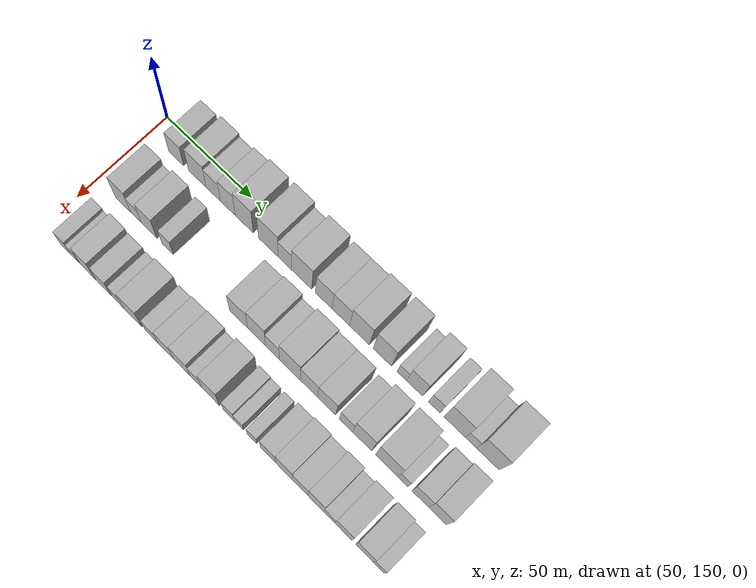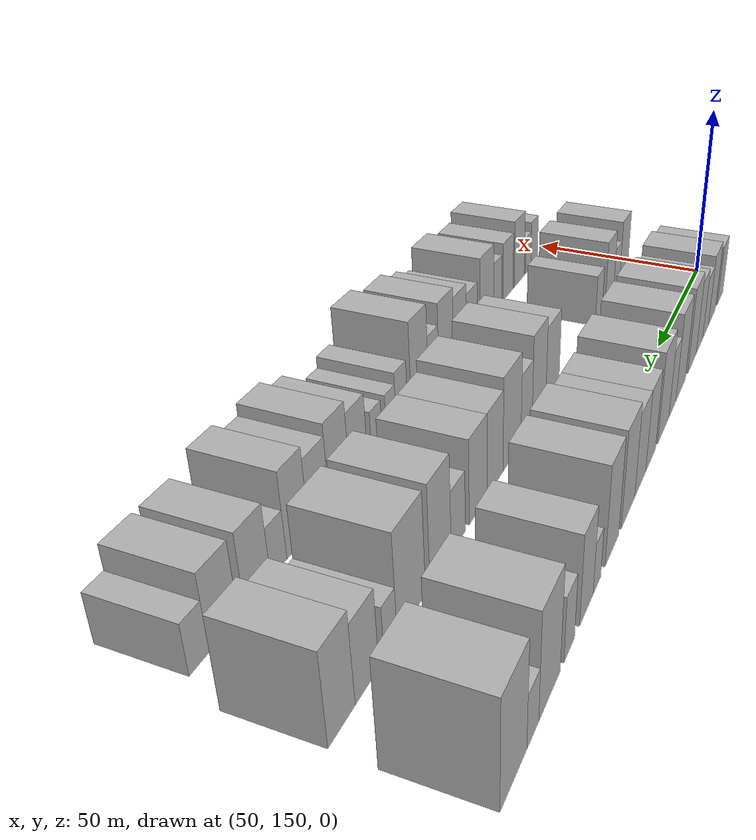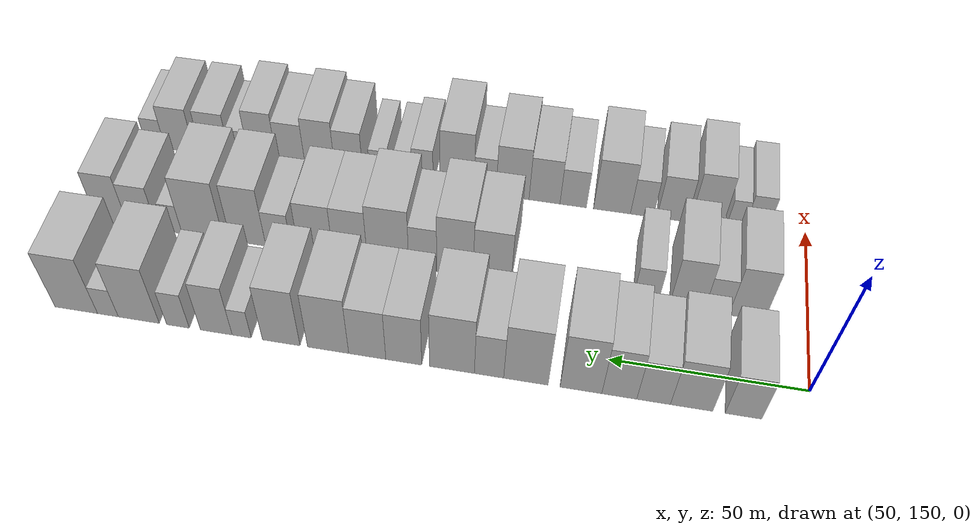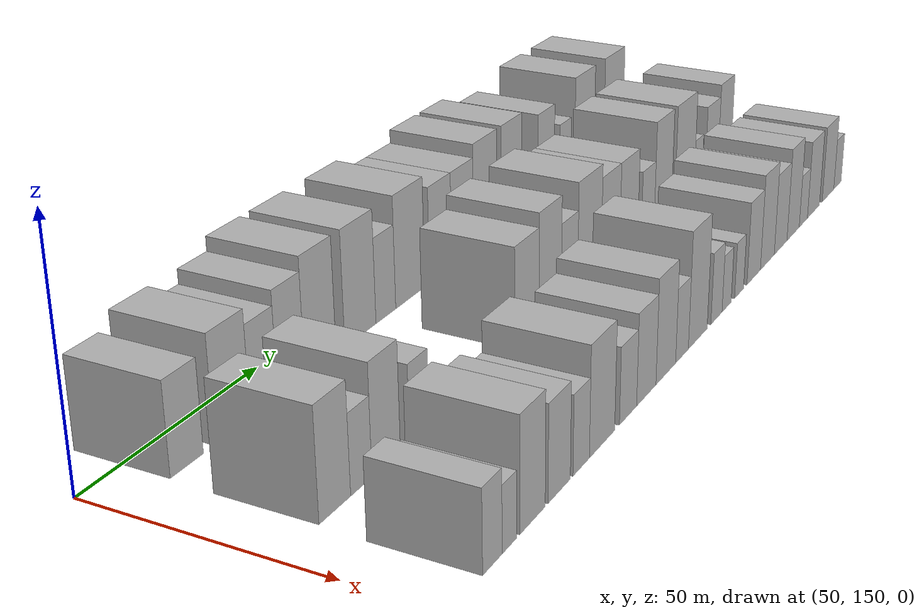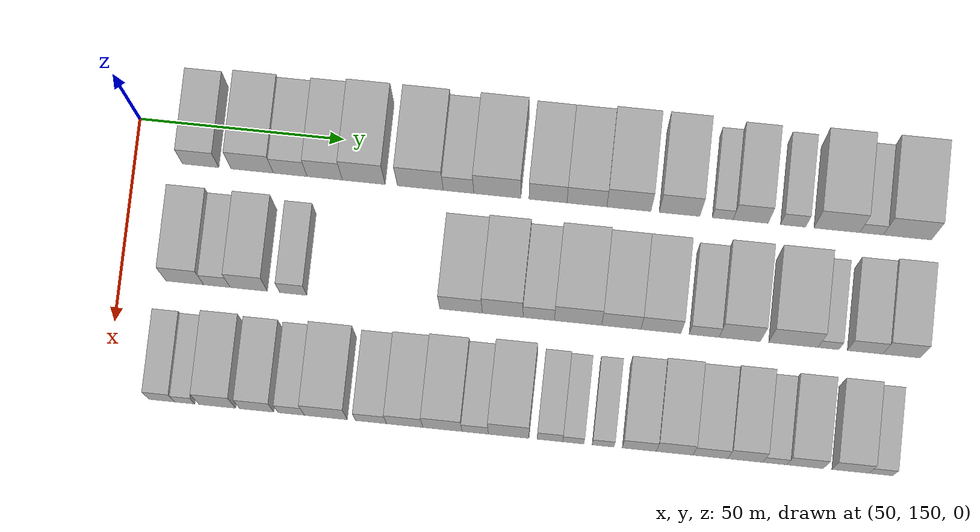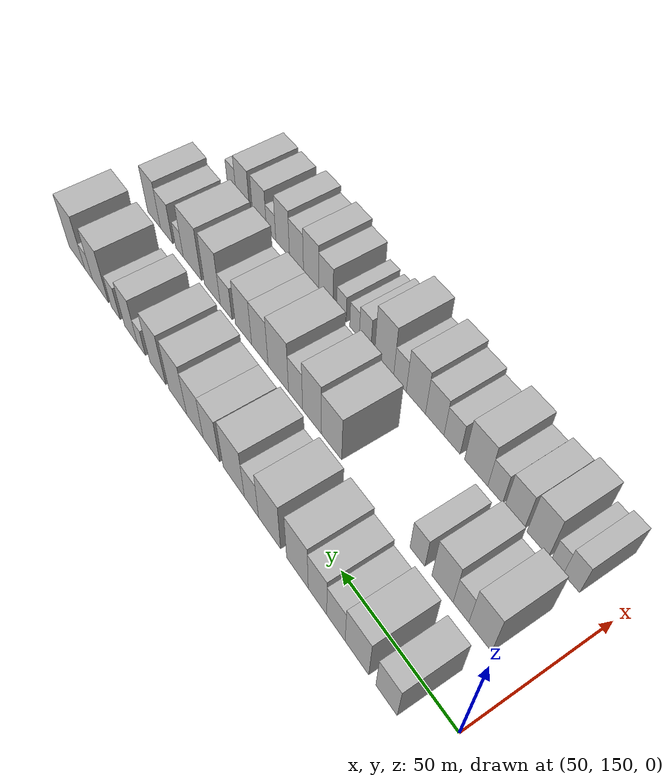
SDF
<sdf version="1.6">
 <world name="default">
  <model name="building_59">
   <static>1</static>
   <pose>50.0000 166.0551 0 0.000000 0.000000 0.000000</pose>
   <link name="link">
    <pose>0 0 9.00 0 0 0</pose>
    <collision name="collision"><geometry><box><size>20.0000 8.8780 18.0000</size></box></geometry></collision>
    <visual name="visual">
     <cast_shadows>0</cast_shadows>
     <geometry><box><size>20.0000 8.8780 18.0000</size></box></geometry>
     <material>
      <script>
       <uri>model://HANNAS_wall/materials/scripts</uri>
       <uri>model://HANNAS_wall/materials/textures</uri>
       <name>vrc/HANNAS_wall</name>
      </script>
     </material>
    </visual>
   </link>
  </model>
  <model name="building_60">
   <static>1</static>
   <pose>50.0000 178.6705 0 0.000000 0.000000 0.000000</pose>
   <link name="link">
    <pose>0 0 10.50 0 0 0</pose>
    <collision name="collision"><geometry><box><size>20.0000 10.3527 21.0000</size></box></geometry></collision>
    <visual name="visual">
     <cast_shadows>0</cast_shadows>
     <geometry><box><size>20.0000 10.3527 21.0000</size></box></geometry>
     <material>
      <script>
       <uri>model://HANNAS_wall/materials/scripts</uri>
       <uri>model://HANNAS_wall/materials/textures</uri>
       <name>vrc/HANNAS_wall</name>
      </script>
     </material>
    </visual>
   </link>
  </model>
  <model name="building_61">
   <static>1</static>
   <pose>50.0000 187.9829 0 0.000000 0.000000 0.000000</pose>
   <link name="link">
    <pose>0 0 9.00 0 0 0</pose>
    <collision name="collision"><geometry><box><size>20.0000 8.2720 18.0000</size></box></geometry></collision>
    <visual name="visual">
     <cast_shadows>0</cast_shadows>
     <geometry><box><size>20.0000 8.2720 18.0000</size></box></geometry>
     <material>
      <script>
       <uri>model://HANNAS_wall/materials/scripts</uri>
       <uri>model://HANNAS_wall/materials/textures</uri>
       <name>vrc/HANNAS_wall</name>
      </script>
     </material>
    </visual>
   </link>
  </model>
  <model name="building_62">
   <static>1</static>
   <pose>50.0000 196.4425 0 0.000000 0.000000 0.000000</pose>
   <link name="link">
    <pose>0 0 10.50 0 0 0</pose>
    <collision name="collision"><geometry><box><size>20.0000 8.6472 21.0000</size></box></geometry></collision>
    <visual name="visual">
     <cast_shadows>0</cast_shadows>
     <geometry><box><size>20.0000 8.6472 21.0000</size></box></geometry>
     <material>
      <script>
       <uri>model://HANNAS_wall/materials/scripts</uri>
       <uri>model://HANNAS_wall/materials/textures</uri>
       <name>vrc/HANNAS_wall</name>
      </script>
     </material>
    </visual>
   </link>
  </model>
  <model name="building_63">
   <static>1</static>
   <pose>50.0000 205.9743 0 0.000000 0.000000 0.000000</pose>
   <link name="link">
    <pose>0 0 12.00 0 0 0</pose>
    <collision name="collision"><geometry><box><size>20.0000 10.4166 24.0000</size></box></geometry></collision>
    <visual name="visual">
     <cast_shadows>0</cast_shadows>
     <geometry><box><size>20.0000 10.4166 24.0000</size></box></geometry>
     <material>
      <script>
       <uri>model://HANNAS_wall/materials/scripts</uri>
       <uri>model://HANNAS_wall/materials/textures</uri>
       <name>vrc/HANNAS_wall</name>
      </script>
     </material>
    </visual>
   </link>
  </model>
  <model name="building_64">
   <static>1</static>
   <pose>50.0000 219.7801 0 0.000000 0.000000 0.000000</pose>
   <link name="link">
    <pose>0 0 12.00 0 0 0</pose>
    <collision name="collision"><geometry><box><size>20.0000 11.1949 24.0000</size></box></geometry></collision>
    <visual name="visual">
     <cast_shadows>0</cast_shadows>
     <geometry><box><size>20.0000 11.1949 24.0000</size></box></geometry>
     <material>
      <script>
       <uri>model://HANNAS_wall/materials/scripts</uri>
       <uri>model://HANNAS_wall/materials/textures</uri>
       <name>vrc/HANNAS_wall</name>
      </script>
     </material>
    </visual>
   </link>
  </model>
  <model name="building_65">
   <static>1</static>
   <pose>50.0000 229.1070 0 0.000000 0.000000 0.000000</pose>
   <link name="link">
    <pose>0 0 9.00 0 0 0</pose>
    <collision name="collision"><geometry><box><size>20.0000 7.4590 18.0000</size></box></geometry></collision>
    <visual name="visual">
     <cast_shadows>0</cast_shadows>
     <geometry><box><size>20.0000 7.4590 18.0000</size></box></geometry>
     <material>
      <script>
       <uri>model://HANNAS_wall/materials/scripts</uri>
       <uri>model://HANNAS_wall/materials/textures</uri>
       <name>vrc/HANNAS_wall</name>
      </script>
     </material>
    </visual>
   </link>
  </model>
  <model name="building_66">
   <static>1</static>
   <pose>50.0000 238.5659 0 0.000000 0.000000 0.000000</pose>
   <link name="link">
    <pose>0 0 12.00 0 0 0</pose>
    <collision name="collision"><geometry><box><size>20.0000 11.4588 24.0000</size></box></geometry></collision>
    <visual name="visual">
     <cast_shadows>0</cast_shadows>
     <geometry><box><size>20.0000 11.4588 24.0000</size></box></geometry>
     <material>
      <script>
       <uri>model://HANNAS_wall/materials/scripts</uri>
       <uri>model://HANNAS_wall/materials/textures</uri>
       <name>vrc/HANNAS_wall</name>
      </script>
     </material>
    </visual>
   </link>
  </model>
  <model name="building_67">
   <static>1</static>
   <pose>50.0000 250.9318 0 0.000000 0.000000 0.000000</pose>
   <link name="link">
    <pose>0 0 10.50 0 0 0</pose>
    <collision name="collision"><geometry><box><size>20.0000 9.2730 21.0000</size></box></geometry></collision>
    <visual name="visual">
     <cast_shadows>0</cast_shadows>
     <geometry><box><size>20.0000 9.2730 21.0000</size></box></geometry>
     <material>
      <script>
       <uri>model://HANNAS_wall/materials/scripts</uri>
       <uri>model://HANNAS_wall/materials/textures</uri>
       <name>vrc/HANNAS_wall</name>
      </script>
     </material>
    </visual>
   </link>
  </model>
  <model name="building_68">
   <static>1</static>
   <pose>50.0000 260.4021 0 0.000000 0.000000 0.000000</pose>
   <link name="link">
    <pose>0 0 10.50 0 0 0</pose>
    <collision name="collision"><geometry><box><size>20.0000 9.6675 21.0000</size></box></geometry></collision>
    <visual name="visual">
     <cast_shadows>0</cast_shadows>
     <geometry><box><size>20.0000 9.6675 21.0000</size></box></geometry>
     <material>
      <script>
       <uri>model://HANNAS_wall/materials/scripts</uri>
       <uri>model://HANNAS_wall/materials/textures</uri>
       <name>vrc/HANNAS_wall</name>
      </script>
     </material>
    </visual>
   </link>
  </model>
  <model name="building_69">
   <static>1</static>
   <pose>50.0000 270.6303 0 0.000000 0.000000 0.000000</pose>
   <link name="link">
    <pose>0 0 12.00 0 0 0</pose>
    <collision name="collision"><geometry><box><size>20.0000 10.7889 24.0000</size></box></geometry></collision>
    <visual name="visual">
     <cast_shadows>0</cast_shadows>
     <geometry><box><size>20.0000 10.7889 24.0000</size></box></geometry>
     <material>
      <script>
       <uri>model://HANNAS_wall/materials/scripts</uri>
       <uri>model://HANNAS_wall/materials/textures</uri>
       <name>vrc/HANNAS_wall</name>
      </script>
     </material>
    </visual>
   </link>
  </model>
  <model name="building_70">
   <static>1</static>
   <pose>50.0000 282.9871 0 0.000000 0.000000 0.000000</pose>
   <link name="link">
    <pose>0 0 12.00 0 0 0</pose>
    <collision name="collision"><geometry><box><size>20.0000 9.9249 24.0000</size></box></geometry></collision>
    <visual name="visual">
     <cast_shadows>0</cast_shadows>
     <geometry><box><size>20.0000 9.9249 24.0000</size></box></geometry>
     <material>
      <script>
       <uri>model://HANNAS_wall/materials/scripts</uri>
       <uri>model://HANNAS_wall/materials/textures</uri>
       <name>vrc/HANNAS_wall</name>
      </script>
     </material>
    </visual>
   </link>
  </model>
  <model name="building_71">
   <static>1</static>
   <pose>50.0000 293.4947 0 0.000000 0.000000 0.000000</pose>
   <link name="link">
    <pose>0 0 6.00 0 0 0</pose>
    <collision name="collision"><geometry><box><size>20.0000 5.0901 12.0000</size></box></geometry></collision>
    <visual name="visual">
     <cast_shadows>0</cast_shadows>
     <geometry><box><size>20.0000 5.0901 12.0000</size></box></geometry>
     <material>
      <script>
       <uri>model://HANNAS_wall/materials/scripts</uri>
       <uri>model://HANNAS_wall/materials/textures</uri>
       <name>vrc/HANNAS_wall</name>
      </script>
     </material>
    </visual>
   </link>
  </model>
  <model name="building_72">
   <static>1</static>
   <pose>50.0000 300.3063 0 0.000000 0.000000 0.000000</pose>
   <link name="link">
    <pose>0 0 10.50 0 0 0</pose>
    <collision name="collision"><geometry><box><size>20.0000 8.5331 21.0000</size></box></geometry></collision>
    <visual name="visual">
     <cast_shadows>0</cast_shadows>
     <geometry><box><size>20.0000 8.5331 21.0000</size></box></geometry>
     <material>
      <script>
       <uri>model://HANNAS_wall/materials/scripts</uri>
       <uri>model://HANNAS_wall/materials/textures</uri>
       <name>vrc/HANNAS_wall</name>
      </script>
     </material>
    </visual>
   </link>
  </model>
  <model name="building_73">
   <static>1</static>
   <pose>50.0000 310.6391 0 0.000000 0.000000 0.000000</pose>
   <link name="link">
    <pose>0 0 7.50 0 0 0</pose>
    <collision name="collision"><geometry><box><size>20.0000 6.1326 15.0000</size></box></geometry></collision>
    <visual name="visual">
     <cast_shadows>0</cast_shadows>
     <geometry><box><size>20.0000 6.1326 15.0000</size></box></geometry>
     <material>
      <script>
       <uri>model://HANNAS_wall/materials/scripts</uri>
       <uri>model://HANNAS_wall/materials/textures</uri>
       <name>vrc/HANNAS_wall</name>
      </script>
     </material>
    </visual>
   </link>
  </model>
  <model name="building_74">
   <static>1</static>
   <pose>50.0000 321.2941 0 0.000000 0.000000 0.000000</pose>
   <link name="link">
    <pose>0 0 12.00 0 0 0</pose>
    <collision name="collision"><geometry><box><size>20.0000 11.1773 24.0000</size></box></geometry></collision>
    <visual name="visual">
     <cast_shadows>0</cast_shadows>
     <geometry><box><size>20.0000 11.1773 24.0000</size></box></geometry>
     <material>
      <script>
       <uri>model://HANNAS_wall/materials/scripts</uri>
       <uri>model://HANNAS_wall/materials/textures</uri>
       <name>vrc/HANNAS_wall</name>
      </script>
     </material>
    </visual>
   </link>
  </model>
  <model name="building_75">
   <static>1</static>
   <pose>50.0000 329.7348 0 0.000000 0.000000 0.000000</pose>
   <link name="link">
    <pose>0 0 6.00 0 0 0</pose>
    <collision name="collision"><geometry><box><size>20.0000 5.7041 12.0000</size></box></geometry></collision>
    <visual name="visual">
     <cast_shadows>0</cast_shadows>
     <geometry><box><size>20.0000 5.7041 12.0000</size></box></geometry>
     <material>
      <script>
       <uri>model://HANNAS_wall/materials/scripts</uri>
       <uri>model://HANNAS_wall/materials/textures</uri>
       <name>vrc/HANNAS_wall</name>
      </script>
     </material>
    </visual>
   </link>
  </model>
  <model name="building_76">
   <static>1</static>
   <pose>50.0000 338.4518 0 0.000000 0.000000 0.000000</pose>
   <link name="link">
    <pose>0 0 12.00 0 0 0</pose>
    <collision name="collision"><geometry><box><size>20.0000 11.7300 24.0000</size></box></geometry></collision>
    <visual name="visual">
     <cast_shadows>0</cast_shadows>
     <geometry><box><size>20.0000 11.7300 24.0000</size></box></geometry>
     <material>
      <script>
       <uri>model://HANNAS_wall/materials/scripts</uri>
       <uri>model://HANNAS_wall/materials/textures</uri>
       <name>vrc/HANNAS_wall</name>
      </script>
     </material>
    </visual>
   </link>
  </model>
  <model name="building_130">
   <static>1</static>
   <pose>79.0000 165.6848 0 0.000000 0.000000 0.000000</pose>
   <link name="link">
    <pose>0 0 10.50 0 0 0</pose>
    <collision name="collision"><geometry><box><size>20.0000 9.1607 21.0000</size></box></geometry></collision>
    <visual name="visual">
     <cast_shadows>0</cast_shadows>
     <geometry><box><size>20.0000 9.1607 21.0000</size></box></geometry>
     <material>
      <script>
       <uri>model://HANNAS_wall/materials/scripts</uri>
       <uri>model://HANNAS_wall/materials/textures</uri>
       <name>vrc/HANNAS_wall</name>
      </script>
     </material>
    </visual>
   </link>
  </model>
  <model name="building_131">
   <static>1</static>
   <pose>79.0000 173.4931 0 0.000000 0.000000 0.000000</pose>
   <link name="link">
    <pose>0 0 7.50 0 0 0</pose>
    <collision name="collision"><geometry><box><size>20.0000 6.4560 15.0000</size></box></geometry></collision>
    <visual name="visual">
     <cast_shadows>0</cast_shadows>
     <geometry><box><size>20.0000 6.4560 15.0000</size></box></geometry>
     <material>
      <script>
       <uri>model://HANNAS_wall/materials/scripts</uri>
       <uri>model://HANNAS_wall/materials/textures</uri>
       <name>vrc/HANNAS_wall</name>
      </script>
     </material>
    </visual>
   </link>
  </model>
  <model name="building_132">
   <static>1</static>
   <pose>79.0000 181.2346 0 0.000000 0.000000 0.000000</pose>
   <link name="link">
    <pose>0 0 10.50 0 0 0</pose>
    <collision name="collision"><geometry><box><size>20.0000 9.0271 21.0000</size></box></geometry></collision>
    <visual name="visual">
     <cast_shadows>0</cast_shadows>
     <geometry><box><size>20.0000 9.0271 21.0000</size></box></geometry>
     <material>
      <script>
       <uri>model://HANNAS_wall/materials/scripts</uri>
       <uri>model://HANNAS_wall/materials/textures</uri>
       <name>vrc/HANNAS_wall</name>
      </script>
     </material>
    </visual>
   </link>
  </model>
  <model name="building_133">
   <static>1</static>
   <pose>79.0000 192.0437 0 0.000000 0.000000 0.000000</pose>
   <link name="link">
    <pose>0 0 7.50 0 0 0</pose>
    <collision name="collision"><geometry><box><size>20.0000 6.5910 15.0000</size></box></geometry></collision>
    <visual name="visual">
     <cast_shadows>0</cast_shadows>
     <geometry><box><size>20.0000 6.5910 15.0000</size></box></geometry>
     <material>
      <script>
       <uri>model://HANNAS_wall/materials/scripts</uri>
       <uri>model://HANNAS_wall/materials/textures</uri>
       <name>vrc/HANNAS_wall</name>
      </script>
     </material>
    </visual>
   </link>
  </model>
  <model name="building_134">
   <static>1</static>
   <pose>79.0000 232.7946 0 0.000000 0.000000 0.000000</pose>
   <link name="link">
    <pose>0 0 10.50 0 0 0</pose>
    <collision name="collision"><geometry><box><size>20.0000 10.3036 21.0000</size></box></geometry></collision>
    <visual name="visual">
     <cast_shadows>0</cast_shadows>
     <geometry><box><size>20.0000 10.3036 21.0000</size></box></geometry>
     <material>
      <script>
       <uri>model://HANNAS_wall/materials/scripts</uri>
       <uri>model://HANNAS_wall/materials/textures</uri>
       <name>vrc/HANNAS_wall</name>
      </script>
     </material>
    </visual>
   </link>
  </model>
  <model name="building_135">
   <static>1</static>
   <pose>79.0000 242.8887 0 0.000000 0.000000 0.000000</pose>
   <link name="link">
    <pose>0 0 12.00 0 0 0</pose>
    <collision name="collision"><geometry><box><size>20.0000 9.8847 24.0000</size></box></geometry></collision>
    <visual name="visual">
     <cast_shadows>0</cast_shadows>
     <geometry><box><size>20.0000 9.8847 24.0000</size></box></geometry>
     <material>
      <script>
       <uri>model://HANNAS_wall/materials/scripts</uri>
       <uri>model://HANNAS_wall/materials/textures</uri>
       <name>vrc/HANNAS_wall</name>
      </script>
     </material>
    </visual>
   </link>
  </model>
  <model name="building_136">
   <static>1</static>
   <pose>79.0000 251.6415 0 0.000000 0.000000 0.000000</pose>
   <link name="link">
    <pose>0 0 9.00 0 0 0</pose>
    <collision name="collision"><geometry><box><size>20.0000 7.6210 18.0000</size></box></geometry></collision>
    <visual name="visual">
     <cast_shadows>0</cast_shadows>
     <geometry><box><size>20.0000 7.6210 18.0000</size></box></geometry>
     <material>
      <script>
       <uri>model://HANNAS_wall/materials/scripts</uri>
       <uri>model://HANNAS_wall/materials/textures</uri>
       <name>vrc/HANNAS_wall</name>
      </script>
     </material>
    </visual>
   </link>
  </model>
  <model name="building_137">
   <static>1</static>
   <pose>79.0000 261.1625 0 0.000000 0.000000 0.000000</pose>
   <link name="link">
    <pose>0 0 12.00 0 0 0</pose>
    <collision name="collision"><geometry><box><size>20.0000 11.4209 24.0000</size></box></geometry></collision>
    <visual name="visual">
     <cast_shadows>0</cast_shadows>
     <geometry><box><size>20.0000 11.4209 24.0000</size></box></geometry>
     <material>
      <script>
       <uri>model://HANNAS_wall/materials/scripts</uri>
       <uri>model://HANNAS_wall/materials/textures</uri>
       <name>vrc/HANNAS_wall</name>
      </script>
     </material>
    </visual>
   </link>
  </model>
  <model name="building_138">
   <static>1</static>
   <pose>79.0000 271.6243 0 0.000000 0.000000 0.000000</pose>
   <link name="link">
    <pose>0 0 10.50 0 0 0</pose>
    <collision name="collision"><geometry><box><size>20.0000 9.5027 21.0000</size></box></geometry></collision>
    <visual name="visual">
     <cast_shadows>0</cast_shadows>
     <geometry><box><size>20.0000 9.5027 21.0000</size></box></geometry>
     <material>
      <script>
       <uri>model://HANNAS_wall/materials/scripts</uri>
       <uri>model://HANNAS_wall/materials/textures</uri>
       <name>vrc/HANNAS_wall</name>
      </script>
     </material>
    </visual>
   </link>
  </model>
  <model name="building_139">
   <static>1</static>
   <pose>79.0000 281.2306 0 0.000000 0.000000 0.000000</pose>
   <link name="link">
    <pose>0 0 10.50 0 0 0</pose>
    <collision name="collision"><geometry><box><size>20.0000 9.7100 21.0000</size></box></geometry></collision>
    <visual name="visual">
     <cast_shadows>0</cast_shadows>
     <geometry><box><size>20.0000 9.7100 21.0000</size></box></geometry>
     <material>
      <script>
       <uri>model://HANNAS_wall/materials/scripts</uri>
       <uri>model://HANNAS_wall/materials/textures</uri>
       <name>vrc/HANNAS_wall</name>
      </script>
     </material>
    </visual>
   </link>
  </model>
  <model name="building_140">
   <static>1</static>
   <pose>79.0000 291.7034 0 0.000000 0.000000 0.000000</pose>
   <link name="link">
    <pose>0 0 7.50 0 0 0</pose>
    <collision name="collision"><geometry><box><size>20.0000 7.2355 15.0000</size></box></geometry></collision>
    <visual name="visual">
     <cast_shadows>0</cast_shadows>
     <geometry><box><size>20.0000 7.2355 15.0000</size></box></geometry>
     <material>
      <script>
       <uri>model://HANNAS_wall/materials/scripts</uri>
       <uri>model://HANNAS_wall/materials/textures</uri>
       <name>vrc/HANNAS_wall</name>
      </script>
     </material>
    </visual>
   </link>
  </model>
  <model name="building_141">
   <static>1</static>
   <pose>79.0000 300.3193 0 0.000000 0.000000 0.000000</pose>
   <link name="link">
    <pose>0 0 12.00 0 0 0</pose>
    <collision name="collision"><geometry><box><size>20.0000 9.9962 24.0000</size></box></geometry></collision>
    <visual name="visual">
     <cast_shadows>0</cast_shadows>
     <geometry><box><size>20.0000 9.9962 24.0000</size></box></geometry>
     <material>
      <script>
       <uri>model://HANNAS_wall/materials/scripts</uri>
       <uri>model://HANNAS_wall/materials/textures</uri>
       <name>vrc/HANNAS_wall</name>
      </script>
     </material>
    </visual>
   </link>
  </model>
  <model name="building_142">
   <static>1</static>
   <pose>79.0000 313.2786 0 0.000000 0.000000 0.000000</pose>
   <link name="link">
    <pose>0 0 12.00 0 0 0</pose>
    <collision name="collision"><geometry><box><size>20.0000 11.9223 24.0000</size></box></geometry></collision>
    <visual name="visual">
     <cast_shadows>0</cast_shadows>
     <geometry><box><size>20.0000 11.9223 24.0000</size></box></geometry>
     <material>
      <script>
       <uri>model://HANNAS_wall/materials/scripts</uri>
       <uri>model://HANNAS_wall/materials/textures</uri>
       <name>vrc/HANNAS_wall</name>
      </script>
     </material>
    </visual>
   </link>
  </model>
  <model name="building_143">
   <static>1</static>
   <pose>79.0000 321.7966 0 0.000000 0.000000 0.000000</pose>
   <link name="link">
    <pose>0 0 6.00 0 0 0</pose>
    <collision name="collision"><geometry><box><size>20.0000 5.1137 12.0000</size></box></geometry></collision>
    <visual name="visual">
     <cast_shadows>0</cast_shadows>
     <geometry><box><size>20.0000 5.1137 12.0000</size></box></geometry>
     <material>
      <script>
       <uri>model://HANNAS_wall/materials/scripts</uri>
       <uri>model://HANNAS_wall/materials/textures</uri>
       <name>vrc/HANNAS_wall</name>
      </script>
     </material>
    </visual>
   </link>
  </model>
  <model name="building_144">
   <static>1</static>
   <pose>79.0000 330.6060 0 0.000000 0.000000 0.000000</pose>
   <link name="link">
    <pose>0 0 9.00 0 0 0</pose>
    <collision name="collision"><geometry><box><size>20.0000 8.5050 18.0000</size></box></geometry></collision>
    <visual name="visual">
     <cast_shadows>0</cast_shadows>
     <geometry><box><size>20.0000 8.5050 18.0000</size></box></geometry>
     <material>
      <script>
       <uri>model://HANNAS_wall/materials/scripts</uri>
       <uri>model://HANNAS_wall/materials/textures</uri>
       <name>vrc/HANNAS_wall</name>
      </script>
     </material>
    </visual>
   </link>
  </model>
  <model name="building_145">
   <static>1</static>
   <pose>79.0000 339.3832 0 0.000000 0.000000 0.000000</pose>
   <link name="link">
    <pose>0 0 10.50 0 0 0</pose>
    <collision name="collision"><geometry><box><size>20.0000 9.0496 21.0000</size></box></geometry></collision>
    <visual name="visual">
     <cast_shadows>0</cast_shadows>
     <geometry><box><size>20.0000 9.0496 21.0000</size></box></geometry>
     <material>
      <script>
       <uri>model://HANNAS_wall/materials/scripts</uri>
       <uri>model://HANNAS_wall/materials/textures</uri>
       <name>vrc/HANNAS_wall</name>
      </script>
     </material>
    </visual>
   </link>
  </model>
  <model name="building_204">
   <static>1</static>
   <pose>108.0000 163.6458 0 0.000000 0.000000 0.000000</pose>
   <link name="link">
    <pose>0 0 7.50 0 0 0</pose>
    <collision name="collision"><geometry><box><size>20.0000 6.2509 15.0000</size></box></geometry></collision>
    <visual name="visual">
     <cast_shadows>0</cast_shadows>
     <geometry><box><size>20.0000 6.2509 15.0000</size></box></geometry>
     <material>
      <script>
       <uri>model://HANNAS_wall/materials/scripts</uri>
       <uri>model://HANNAS_wall/materials/textures</uri>
       <name>vrc/HANNAS_wall</name>
      </script>
     </material>
    </visual>
   </link>
  </model>
  <model name="building_205">
   <static>1</static>
   <pose>108.0000 169.1932 0 0.000000 0.000000 0.000000</pose>
   <link name="link">
    <pose>0 0 6.00 0 0 0</pose>
    <collision name="collision"><geometry><box><size>20.0000 4.8438 12.0000</size></box></geometry></collision>
    <visual name="visual">
     <cast_shadows>0</cast_shadows>
     <geometry><box><size>20.0000 4.8438 12.0000</size></box></geometry>
     <material>
      <script>
       <uri>model://HANNAS_wall/materials/scripts</uri>
       <uri>model://HANNAS_wall/materials/textures</uri>
       <name>vrc/HANNAS_wall</name>
      </script>
     </material>
    </visual>
   </link>
  </model>
  <model name="building_206">
   <static>1</static>
   <pose>108.0000 177.0395 0 0.000000 0.000000 0.000000</pose>
   <link name="link">
    <pose>0 0 10.50 0 0 0</pose>
    <collision name="collision"><geometry><box><size>20.0000 8.8489 21.0000</size></box></geometry></collision>
    <visual name="visual">
     <cast_shadows>0</cast_shadows>
     <geometry><box><size>20.0000 8.8489 21.0000</size></box></geometry>
     <material>
      <script>
       <uri>model://HANNAS_wall/materials/scripts</uri>
       <uri>model://HANNAS_wall/materials/textures</uri>
       <name>vrc/HANNAS_wall</name>
      </script>
     </material>
    </visual>
   </link>
  </model>
  <model name="building_207">
   <static>1</static>
   <pose>108.0000 186.5854 0 0.000000 0.000000 0.000000</pose>
   <link name="link">
    <pose>0 0 9.00 0 0 0</pose>
    <collision name="collision"><geometry><box><size>20.0000 8.2427 18.0000</size></box></geometry></collision>
    <visual name="visual">
     <cast_shadows>0</cast_shadows>
     <geometry><box><size>20.0000 8.2427 18.0000</size></box></geometry>
     <material>
      <script>
       <uri>model://HANNAS_wall/materials/scripts</uri>
       <uri>model://HANNAS_wall/materials/textures</uri>
       <name>vrc/HANNAS_wall</name>
      </script>
     </material>
    </visual>
   </link>
  </model>
  <model name="building_208">
   <static>1</static>
   <pose>108.0000 194.8984 0 0.000000 0.000000 0.000000</pose>
   <link name="link">
    <pose>0 0 7.50 0 0 0</pose>
    <collision name="collision"><geometry><box><size>20.0000 6.3833 15.0000</size></box></geometry></collision>
    <visual name="visual">
     <cast_shadows>0</cast_shadows>
     <geometry><box><size>20.0000 6.3833 15.0000</size></box></geometry>
     <material>
      <script>
       <uri>model://HANNAS_wall/materials/scripts</uri>
       <uri>model://HANNAS_wall/materials/textures</uri>
       <name>vrc/HANNAS_wall</name>
      </script>
     </material>
    </visual>
   </link>
  </model>
  <model name="building_209">
   <static>1</static>
   <pose>108.0000 203.2568 0 0.000000 0.000000 0.000000</pose>
   <link name="link">
    <pose>0 0 10.50 0 0 0</pose>
    <collision name="collision"><geometry><box><size>20.0000 10.3335 21.0000</size></box></geometry></collision>
    <visual name="visual">
     <cast_shadows>0</cast_shadows>
     <geometry><box><size>20.0000 10.3335 21.0000</size></box></geometry>
     <material>
      <script>
       <uri>model://HANNAS_wall/materials/scripts</uri>
       <uri>model://HANNAS_wall/materials/textures</uri>
       <name>vrc/HANNAS_wall</name>
      </script>
     </material>
    </visual>
   </link>
  </model>
  <model name="building_210">
   <static>1</static>
   <pose>108.0000 214.1605 0 0.000000 0.000000 0.000000</pose>
   <link name="link">
    <pose>0 0 7.50 0 0 0</pose>
    <collision name="collision"><geometry><box><size>20.0000 7.4741 15.0000</size></box></geometry></collision>
    <visual name="visual">
     <cast_shadows>0</cast_shadows>
     <geometry><box><size>20.0000 7.4741 15.0000</size></box></geometry>
     <material>
      <script>
       <uri>model://HANNAS_wall/materials/scripts</uri>
       <uri>model://HANNAS_wall/materials/textures</uri>
       <name>vrc/HANNAS_wall</name>
      </script>
     </material>
    </visual>
   </link>
  </model>
  <model name="building_211">
   <static>1</static>
   <pose>108.0000 222.2952 0 0.000000 0.000000 0.000000</pose>
   <link name="link">
    <pose>0 0 9.00 0 0 0</pose>
    <collision name="collision"><geometry><box><size>20.0000 8.7953 18.0000</size></box></geometry></collision>
    <visual name="visual">
     <cast_shadows>0</cast_shadows>
     <geometry><box><size>20.0000 8.7953 18.0000</size></box></geometry>
     <material>
      <script>
       <uri>model://HANNAS_wall/materials/scripts</uri>
       <uri>model://HANNAS_wall/materials/textures</uri>
       <name>vrc/HANNAS_wall</name>
      </script>
     </material>
    </visual>
   </link>
  </model>
  <model name="building_212">
   <static>1</static>
   <pose>108.0000 231.4016 0 0.000000 0.000000 0.000000</pose>
   <link name="link">
    <pose>0 0 10.50 0 0 0</pose>
    <collision name="collision"><geometry><box><size>20.0000 9.4175 21.0000</size></box></geometry></collision>
    <visual name="visual">
     <cast_shadows>0</cast_shadows>
     <geometry><box><size>20.0000 9.4175 21.0000</size></box></geometry>
     <material>
      <script>
       <uri>model://HANNAS_wall/materials/scripts</uri>
       <uri>model://HANNAS_wall/materials/textures</uri>
       <name>vrc/HANNAS_wall</name>
      </script>
     </material>
    </visual>
   </link>
  </model>
  <model name="building_213">
   <static>1</static>
   <pose>108.0000 239.2914 0 0.000000 0.000000 0.000000</pose>
   <link name="link">
    <pose>0 0 7.50 0 0 0</pose>
    <collision name="collision"><geometry><box><size>20.0000 6.3620 15.0000</size></box></geometry></collision>
    <visual name="visual">
     <cast_shadows>0</cast_shadows>
     <geometry><box><size>20.0000 6.3620 15.0000</size></box></geometry>
     <material>
      <script>
       <uri>model://HANNAS_wall/materials/scripts</uri>
       <uri>model://HANNAS_wall/materials/textures</uri>
       <name>vrc/HANNAS_wall</name>
      </script>
     </material>
    </visual>
   </link>
  </model>
  <model name="building_214">
   <static>1</static>
   <pose>108.0000 247.3641 0 0.000000 0.000000 0.000000</pose>
   <link name="link">
    <pose>0 0 12.00 0 0 0</pose>
    <collision name="collision"><geometry><box><size>20.0000 9.7834 24.0000</size></box></geometry></collision>
    <visual name="visual">
     <cast_shadows>0</cast_shadows>
     <geometry><box><size>20.0000 9.7834 24.0000</size></box></geometry>
     <material>
      <script>
       <uri>model://HANNAS_wall/materials/scripts</uri>
       <uri>model://HANNAS_wall/materials/textures</uri>
       <name>vrc/HANNAS_wall</name>
      </script>
     </material>
    </visual>
   </link>
  </model>
  <model name="building_215">
   <static>1</static>
   <pose>108.0000 257.3206 0 0.000000 0.000000 0.000000</pose>
   <link name="link">
    <pose>0 0 7.50 0 0 0</pose>
    <collision name="collision"><geometry><box><size>20.0000 6.1298 15.0000</size></box></geometry></collision>
    <visual name="visual">
     <cast_shadows>0</cast_shadows>
     <geometry><box><size>20.0000 6.1298 15.0000</size></box></geometry>
     <material>
      <script>
       <uri>model://HANNAS_wall/materials/scripts</uri>
       <uri>model://HANNAS_wall/materials/textures</uri>
       <name>vrc/HANNAS_wall</name>
      </script>
     </material>
    </visual>
   </link>
  </model>
  <model name="building_216">
   <static>1</static>
   <pose>108.0000 262.9345 0 0.000000 0.000000 0.000000</pose>
   <link name="link">
    <pose>0 0 6.00 0 0 0</pose>
    <collision name="collision"><geometry><box><size>20.0000 5.0979 12.0000</size></box></geometry></collision>
    <visual name="visual">
     <cast_shadows>0</cast_shadows>
     <geometry><box><size>20.0000 5.0979 12.0000</size></box></geometry>
     <material>
      <script>
       <uri>model://HANNAS_wall/materials/scripts</uri>
       <uri>model://HANNAS_wall/materials/textures</uri>
       <name>vrc/HANNAS_wall</name>
      </script>
     </material>
    </visual>
   </link>
  </model>
  <model name="building_217">
   <static>1</static>
   <pose>108.0000 270.1046 0 0.000000 0.000000 0.000000</pose>
   <link name="link">
    <pose>0 0 6.00 0 0 0</pose>
    <collision name="collision"><geometry><box><size>20.0000 5.2423 12.0000</size></box></geometry></collision>
    <visual name="visual">
     <cast_shadows>0</cast_shadows>
     <geometry><box><size>20.0000 5.2423 12.0000</size></box></geometry>
     <material>
      <script>
       <uri>model://HANNAS_wall/materials/scripts</uri>
       <uri>model://HANNAS_wall/materials/textures</uri>
       <name>vrc/HANNAS_wall</name>
      </script>
     </material>
    </visual>
   </link>
  </model>
  <model name="building_218">
   <static>1</static>
   <pose>108.0000 278.8240 0 0.000000 0.000000 0.000000</pose>
   <link name="link">
    <pose>0 0 9.00 0 0 0</pose>
    <collision name="collision"><geometry><box><size>20.0000 8.1965 18.0000</size></box></geometry></collision>
    <visual name="visual">
     <cast_shadows>0</cast_shadows>
     <geometry><box><size>20.0000 8.1965 18.0000</size></box></geometry>
     <material>
      <script>
       <uri>model://HANNAS_wall/materials/scripts</uri>
       <uri>model://HANNAS_wall/materials/textures</uri>
       <name>vrc/HANNAS_wall</name>
      </script>
     </material>
    </visual>
   </link>
  </model>
  <model name="building_219">
   <static>1</static>
   <pose>108.0000 287.3243 0 0.000000 0.000000 0.000000</pose>
   <link name="link">
    <pose>0 0 10.50 0 0 0</pose>
    <collision name="collision"><geometry><box><size>20.0000 8.8043 21.0000</size></box></geometry></collision>
    <visual name="visual">
     <cast_shadows>0</cast_shadows>
     <geometry><box><size>20.0000 8.8043 21.0000</size></box></geometry>
     <material>
      <script>
       <uri>model://HANNAS_wall/materials/scripts</uri>
       <uri>model://HANNAS_wall/materials/textures</uri>
       <name>vrc/HANNAS_wall</name>
      </script>
     </material>
    </visual>
   </link>
  </model>
  <model name="building_220">
   <static>1</static>
   <pose>108.0000 295.9201 0 0.000000 0.000000 0.000000</pose>
   <link name="link">
    <pose>0 0 9.00 0 0 0</pose>
    <collision name="collision"><geometry><box><size>20.0000 8.3873 18.0000</size></box></geometry></collision>
    <visual name="visual">
     <cast_shadows>0</cast_shadows>
     <geometry><box><size>20.0000 8.3873 18.0000</size></box></geometry>
     <material>
      <script>
       <uri>model://HANNAS_wall/materials/scripts</uri>
       <uri>model://HANNAS_wall/materials/textures</uri>
       <name>vrc/HANNAS_wall</name>
      </script>
     </material>
    </visual>
   </link>
  </model>
  <model name="building_221">
   <static>1</static>
   <pose>108.0000 304.3209 0 0.000000 0.000000 0.000000</pose>
   <link name="link">
    <pose>0 0 10.50 0 0 0</pose>
    <collision name="collision"><geometry><box><size>20.0000 8.4143 21.0000</size></box></geometry></collision>
    <visual name="visual">
     <cast_shadows>0</cast_shadows>
     <geometry><box><size>20.0000 8.4143 21.0000</size></box></geometry>
     <material>
      <script>
       <uri>model://HANNAS_wall/materials/scripts</uri>
       <uri>model://HANNAS_wall/materials/textures</uri>
       <name>vrc/HANNAS_wall</name>
      </script>
     </material>
    </visual>
   </link>
  </model>
  <model name="building_222">
   <static>1</static>
   <pose>108.0000 311.4340 0 0.000000 0.000000 0.000000</pose>
   <link name="link">
    <pose>0 0 6.00 0 0 0</pose>
    <collision name="collision"><geometry><box><size>20.0000 5.8118 12.0000</size></box></geometry></collision>
    <visual name="visual">
     <cast_shadows>0</cast_shadows>
     <geometry><box><size>20.0000 5.8118 12.0000</size></box></geometry>
     <material>
      <script>
       <uri>model://HANNAS_wall/materials/scripts</uri>
       <uri>model://HANNAS_wall/materials/textures</uri>
       <name>vrc/HANNAS_wall</name>
      </script>
     </material>
    </visual>
   </link>
  </model>
  <model name="building_223">
   <static>1</static>
   <pose>108.0000 318.7410 0 0.000000 0.000000 0.000000</pose>
   <link name="link">
    <pose>0 0 9.00 0 0 0</pose>
    <collision name="collision"><geometry><box><size>20.0000 8.8022 18.0000</size></box></geometry></collision>
    <visual name="visual">
     <cast_shadows>0</cast_shadows>
     <geometry><box><size>20.0000 8.8022 18.0000</size></box></geometry>
     <material>
      <script>
       <uri>model://HANNAS_wall/materials/scripts</uri>
       <uri>model://HANNAS_wall/materials/textures</uri>
       <name>vrc/HANNAS_wall</name>
      </script>
     </material>
    </visual>
   </link>
  </model>
  <model name="building_224">
   <static>1</static>
   <pose>108.0000 329.6026 0 0.000000 0.000000 0.000000</pose>
   <link name="link">
    <pose>0 0 9.00 0 0 0</pose>
    <collision name="collision"><geometry><box><size>20.0000 8.9211 18.0000</size></box></geometry></collision>
    <visual name="visual">
     <cast_shadows>0</cast_shadows>
     <geometry><box><size>20.0000 8.9211 18.0000</size></box></geometry>
     <material>
      <script>
       <uri>model://HANNAS_wall/materials/scripts</uri>
       <uri>model://HANNAS_wall/materials/textures</uri>
       <name>vrc/HANNAS_wall</name>
      </script>
     </material>
    </visual>
   </link>
  </model>
  <model name="building_225">
   <static>1</static>
   <pose>108.0000 336.9464 0 0.000000 0.000000 0.000000</pose>
   <link name="link">
    <pose>0 0 6.00 0 0 0</pose>
    <collision name="collision"><geometry><box><size>20.0000 5.7663 12.0000</size></box></geometry></collision>
    <visual name="visual">
     <cast_shadows>0</cast_shadows>
     <geometry><box><size>20.0000 5.7663 12.0000</size></box></geometry>
     <material>
      <script>
       <uri>model://HANNAS_wall/materials/scripts</uri>
       <uri>model://HANNAS_wall/materials/textures</uri>
       <name>vrc/HANNAS_wall</name>
      </script>
     </material>
    </visual>
   </link>
  </model>
 </world>
</sdf>
